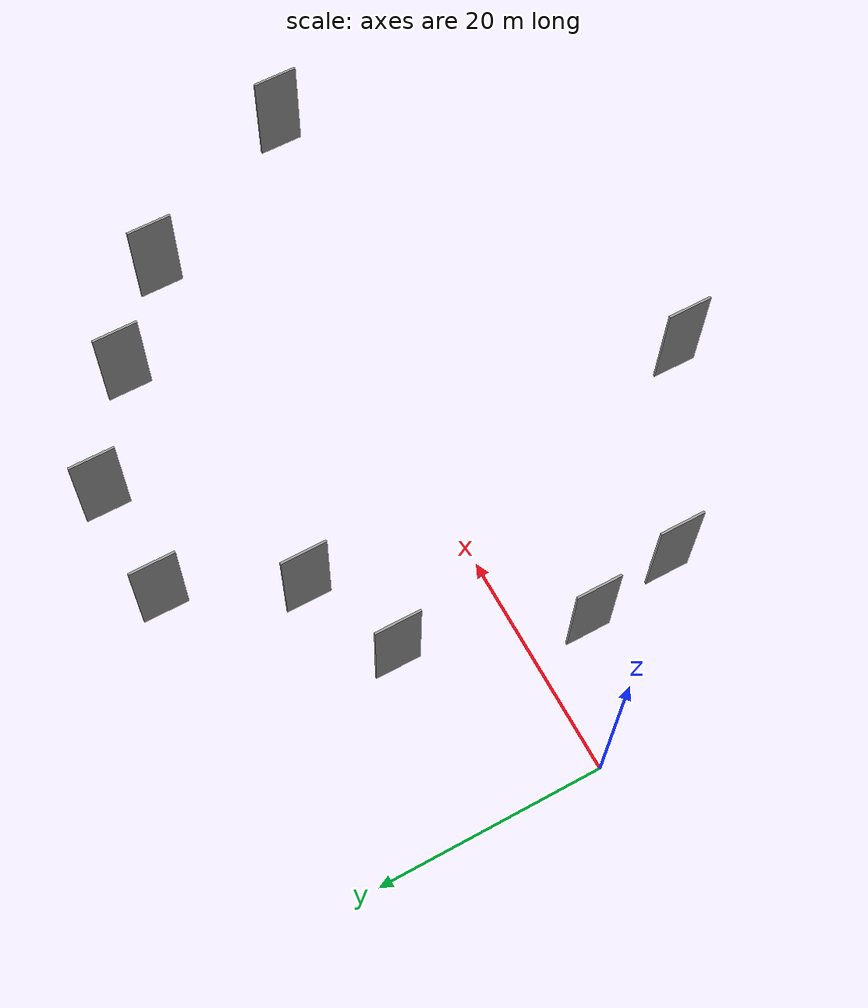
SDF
<sdf version="1.6">
 <world name="default">
  <scene>
   <sky><clouds><speed>12</speed></clouds></sky>
   <ambient>0.4 0.4 0.4 1</ambient>
   <background>0.7 0.7 0.7 1</background>
   <shadows>1</shadows>
  </scene>
  <gravity>0 0 -9.8066</gravity>
  <magnetic_field>6e-06 2.3e-05 -4.2e-05</magnetic_field>
  <physics default="0" name="default_physics" type="ode">
   <ode>
    <solver>
     <type>quick</type>
     <iters>10</iters>
     <sor>1.0</sor>
     <use_dynamic_moi_rescaling>0</use_dynamic_moi_rescaling>
    </solver>
    <constraints>
     <cfm>0</cfm>
     <erp>0.2</erp>
     <contact_max_correcting_vel>100</contact_max_correcting_vel>
     <contact_surface_layer>0.001</contact_surface_layer>
    </constraints>
   </ode>
   <max_step_size>0.004</max_step_size>
   <real_time_factor>1</real_time_factor>
   <real_time_update_rate>250</real_time_update_rate>
  </physics>
  <light name="sun" type="directional">
   <pose>0 0 10 0 0 0</pose>
   <diffuse>0.8 0.8 0.8 1</diffuse>
   <specular>0.2 0.2 0.2 1</specular>
   <attenuation>
    <range>1000</range>
    <constant>0.9</constant>
    <linear>0.01</linear>
    <quadratic>0.001</quadratic>
   </attenuation>
   <direction>-0.5 0.1 -0.9</direction>
  </light>
  <model name="grey_wall_1">
   <static>1</static>
   <pose>37.9483 25.1403 2.5 0.000000 0.000000 1.570796</pose>
   <link name="link">
    <pose>0 0 5.00 0 0 0</pose>
    <collision name="collision"><geometry><box><size>4.00 0.2 10.00</size></box></geometry></collision>
    <visual name="visual">
     <cast_shadows>0</cast_shadows>
     <geometry><box><size>4.00 0.2 10.00</size></box></geometry>
     <material>
      <script>
       <uri>model://grey_wall/materials/scripts</uri>
       <uri>model://grey_wall/materials/textures</uri>
       <name>vrc/grey_wall</name>
      </script>
     </material>
    </visual>
   </link>
  </model>
  <model name="grey_wall_2">
   <static>1</static>
   <pose>14.4003 10.5123 2.5 0.000000 0.000000 1.570796</pose>
   <link name="link">
    <pose>0 0 5.00 0 0 0</pose>
    <collision name="collision"><geometry><box><size>4.00 0.2 10.00</size></box></geometry></collision>
    <visual name="visual">
     <cast_shadows>0</cast_shadows>
     <geometry><box><size>4.00 0.2 10.00</size></box></geometry>
     <material>
      <script>
       <uri>model://grey_wall/materials/scripts</uri>
       <uri>model://grey_wall/materials/textures</uri>
       <name>vrc/grey_wall</name>
      </script>
     </material>
    </visual>
   </link>
  </model>
  <model name="grey_wall_3">
   <static>1</static>
   <pose>27.1181 -23.6101 2.5 0.000000 0.000000 1.570796</pose>
   <link name="link">
    <pose>0 0 5.00 0 0 0</pose>
    <collision name="collision"><geometry><box><size>4.00 0.2 10.00</size></box></geometry></collision>
    <visual name="visual">
     <cast_shadows>0</cast_shadows>
     <geometry><box><size>4.00 0.2 10.00</size></box></geometry>
     <material>
      <script>
       <uri>model://grey_wall/materials/scripts</uri>
       <uri>model://grey_wall/materials/textures</uri>
       <name>vrc/grey_wall</name>
      </script>
     </material>
    </visual>
   </link>
  </model>
  <model name="grey_wall_4">
   <static>1</static>
   <pose>22.8521 14.1590 2.5 0.000000 0.000000 1.570796</pose>
   <link name="link">
    <pose>0 0 5.00 0 0 0</pose>
    <collision name="collision"><geometry><box><size>4.00 0.2 10.00</size></box></geometry></collision>
    <visual name="visual">
     <cast_shadows>0</cast_shadows>
     <geometry><box><size>4.00 0.2 10.00</size></box></geometry>
     <material>
      <script>
       <uri>model://grey_wall/materials/scripts</uri>
       <uri>model://grey_wall/materials/textures</uri>
       <name>vrc/grey_wall</name>
      </script>
     </material>
    </visual>
   </link>
  </model>
  <model name="grey_wall_5">
   <static>1</static>
   <pose>55.5822 11.9411 2.5 0.000000 0.000000 1.570796</pose>
   <link name="link">
    <pose>0 0 5.00 0 0 0</pose>
    <collision name="collision"><geometry><box><size>4.00 0.2 10.00</size></box></geometry></collision>
    <visual name="visual">
     <cast_shadows>0</cast_shadows>
     <geometry><box><size>4.00 0.2 10.00</size></box></geometry>
     <material>
      <script>
       <uri>model://grey_wall/materials/scripts</uri>
       <uri>model://grey_wall/materials/textures</uri>
       <name>vrc/grey_wall</name>
      </script>
     </material>
    </visual>
   </link>
  </model>
  <model name="grey_wall_6">
   <static>1</static>
   <pose>9.6144 -4.3088 2.5 0.000000 0.000000 1.570796</pose>
   <link name="link">
    <pose>0 0 5.00 0 0 0</pose>
    <collision name="collision"><geometry><box><size>4.00 0.2 10.00</size></box></geometry></collision>
    <visual name="visual">
     <cast_shadows>0</cast_shadows>
     <geometry><box><size>4.00 0.2 10.00</size></box></geometry>
     <material>
      <script>
       <uri>model://grey_wall/materials/scripts</uri>
       <uri>model://grey_wall/materials/textures</uri>
       <name>vrc/grey_wall</name>
      </script>
     </material>
    </visual>
   </link>
  </model>
  <model name="grey_wall_7">
   <static>1</static>
   <pose>64.2682 -4.2852 2.5 0.000000 0.000000 1.570796</pose>
   <link name="link">
    <pose>0 0 5.00 0 0 0</pose>
    <collision name="collision"><geometry><box><size>4.00 0.2 10.00</size></box></geometry></collision>
    <visual name="visual">
     <cast_shadows>0</cast_shadows>
     <geometry><box><size>4.00 0.2 10.00</size></box></geometry>
     <material>
      <script>
       <uri>model://grey_wall/materials/scripts</uri>
       <uri>model://grey_wall/materials/textures</uri>
       <name>vrc/grey_wall</name>
      </script>
     </material>
    </visual>
   </link>
  </model>
  <model name="grey_wall_8">
   <static>1</static>
   <pose>11.0595 -12.6928 2.5 0.000000 0.000000 1.570796</pose>
   <link name="link">
    <pose>0 0 5.00 0 0 0</pose>
    <collision name="collision"><geometry><box><size>4.00 0.2 10.00</size></box></geometry></collision>
    <visual name="visual">
     <cast_shadows>0</cast_shadows>
     <geometry><box><size>4.00 0.2 10.00</size></box></geometry>
     <material>
      <script>
       <uri>model://grey_wall/materials/scripts</uri>
       <uri>model://grey_wall/materials/textures</uri>
       <name>vrc/grey_wall</name>
      </script>
     </material>
    </visual>
   </link>
  </model>
  <model name="grey_wall_9">
   <static>1</static>
   <pose>47.5019 18.7571 2.5 0.000000 0.000000 1.570796</pose>
   <link name="link">
    <pose>0 0 5.00 0 0 0</pose>
    <collision name="collision"><geometry><box><size>4.00 0.2 10.00</size></box></geometry></collision>
    <visual name="visual">
     <cast_shadows>0</cast_shadows>
     <geometry><box><size>4.00 0.2 10.00</size></box></geometry>
     <material>
      <script>
       <uri>model://grey_wall/materials/scripts</uri>
       <uri>model://grey_wall/materials/textures</uri>
       <name>vrc/grey_wall</name>
      </script>
     </material>
    </visual>
   </link>
  </model>
  <model name="grey_wall_10">
   <static>1</static>
   <pose>27.5807 24.7600 2.5 0.000000 0.000000 1.570796</pose>
   <link name="link">
    <pose>0 0 5.00 0 0 0</pose>
    <collision name="collision"><geometry><box><size>4.00 0.2 10.00</size></box></geometry></collision>
    <visual name="visual">
     <cast_shadows>0</cast_shadows>
     <geometry><box><size>4.00 0.2 10.00</size></box></geometry>
     <material>
      <script>
       <uri>model://grey_wall/materials/scripts</uri>
       <uri>model://grey_wall/materials/textures</uri>
       <name>vrc/grey_wall</name>
      </script>
     </material>
    </visual>
   </link>
  </model>
 </world>
</sdf>
